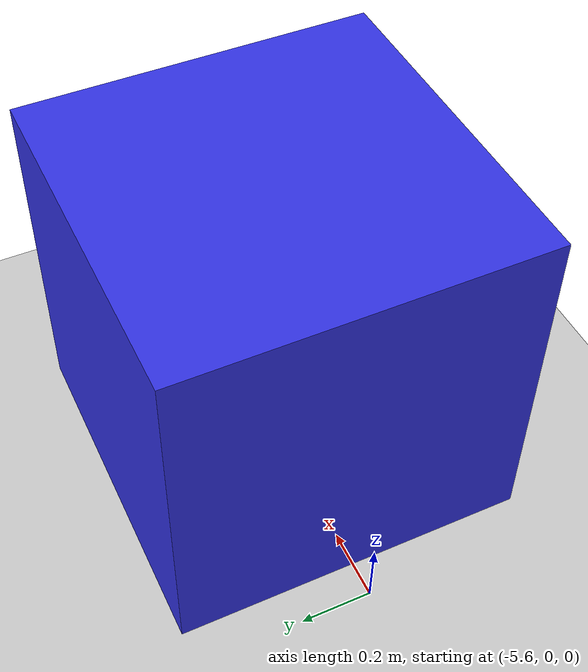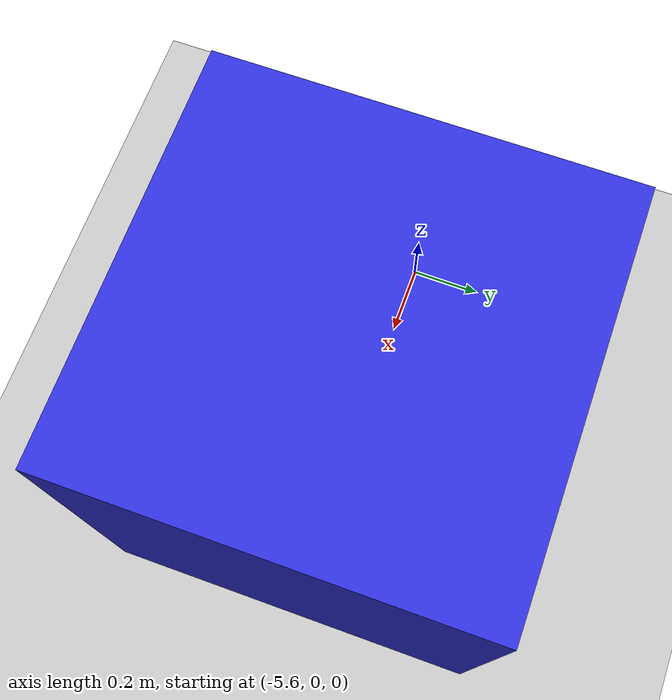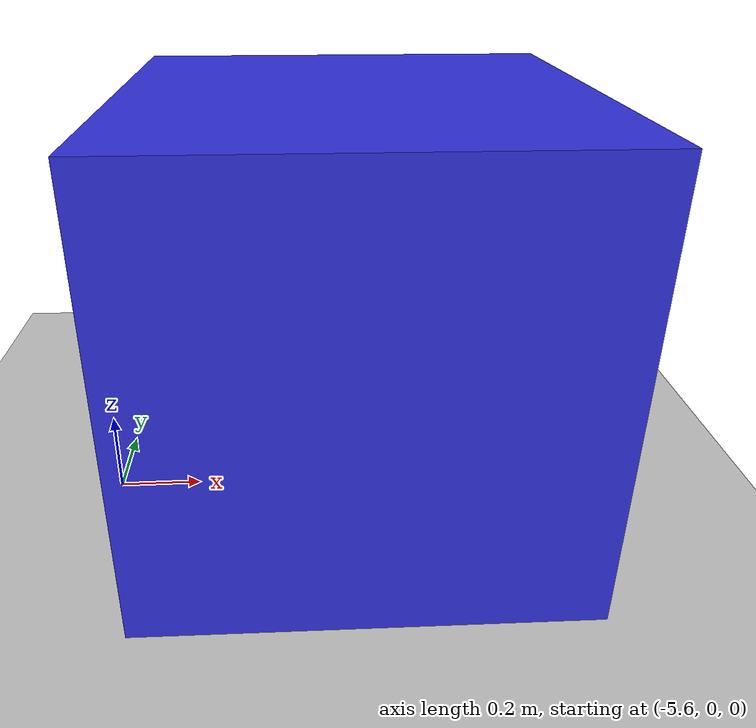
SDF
<?xml version="1.0" ?>
<sdf version="1.6">
  <world name="empty_world">

    <!-- 기본 설정 -->
    <include>
      <uri>model://ground_plane</uri>
    </include>

    <include>
      <uri>model://sun</uri>
    </include>

    <!-- 정육면체 (Box) 오브젝트 -->
    <model name="obstacle_box">
      <pose>-5 0 0.5 0 0 0</pose> <!-- x=-5m, y=0, z=0.5m (높이/2 만큼 띄움) -->
      <static>true</static>
      <link name="link">
        <collision name="collision">
          <geometry>
            <box>
              <size>1 1 1</size>
            </box>
          </geometry>
        </collision>
        <visual name="visual">
          <geometry>
            <box>
              <size>1 1 1</size>
            </box>
          </geometry>
          <material>
            <ambient>0.1 0.1 0.8 1</ambient>
            <diffuse>0.2 0.2 0.9 1</diffuse>
          </material>
        </visual>
      </link>
    </model>

  </world>
</sdf>
